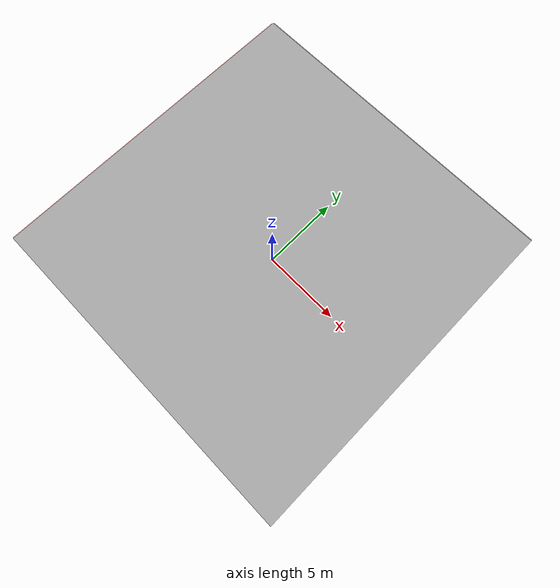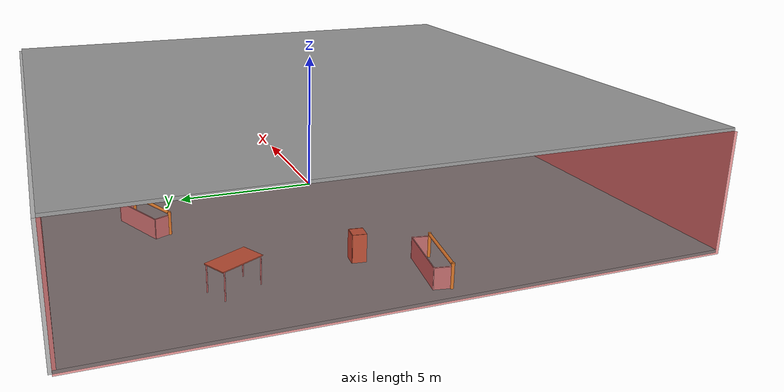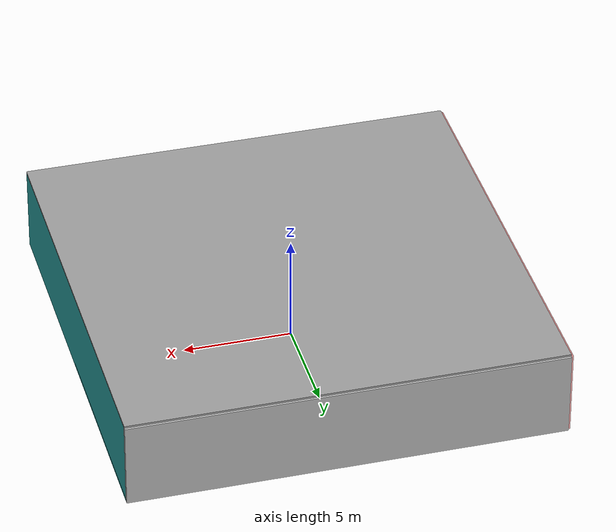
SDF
<sdf version="1.4">
 <world name="default">
  <physics type="ode">
   <max_step_size>0.001</max_step_size>
   <real_time_factor>1</real_time_factor>
   <real_time_update_rate>1000</real_time_update_rate>
   <gravity>0 0 -9.8</gravity>
  </physics>
  <scene><ambient>0.4 0.4 0.4 1</ambient><background>0.7 0.7 0.7 1</background><shadows>1</shadows></scene>
  <model name="Surrounding">
   <static>1</static>
   <link name="Ceiling">
    <collision name="Ceiling_Collision"><geometry><box><size>20 20 0.1</size></box></geometry></collision>
    <visual name="Ceiling_Visual">
     <geometry><box><size>20 20 0.1</size></box></geometry>
     <material>
      <script><uri>file://media/materials/scripts/gazebo.material</uri><name>Gazebo/GreyGradientSky</name></script>
     </material>
    </visual>
    <pose>0 0 4.05 0 0 0</pose>
   </link>
   <link name="Wall_South">
    <collision name="Wall_South_Collision">
     <geometry><box><size>20 0 4</size></box></geometry>
     <pose>0 0 2 0 -0 0</pose>
    </collision>
    <visual name="Wall_South_Visual">
     <pose>0 0 2 0 -0 0</pose>
     <geometry><box><size>20 0 4</size></box></geometry>
     <material>
      <script><uri>file://media/materials/scripts/gazebo.material</uri><name>Gazebo/LightOff</name></script>
     </material>
    </visual>
    <velocity_decay><linear>0</linear><angular>0</angular></velocity_decay>
    <pose>0 -10 0 0 -0 0</pose>
   </link>
   <link name="Wall_East">
    <collision name="Wall_21_Collision">
     <geometry><box><size>20 0 4</size></box></geometry>
     <pose>0 0 2 0 -0 0</pose>
    </collision>
    <visual name="Wall_21_Visual">
     <pose>0 0 2 0 -0 0</pose>
     <geometry><box><size>20 0 4</size></box></geometry>
     <material>
      <script><uri>file://media/materials/scripts/gazebo.material</uri><name>Gazebo/TurquoiseGlow</name></script>
     </material>
    </visual>
    <velocity_decay><linear>0</linear><angular>0</angular></velocity_decay>
    <pose>10 0 0 0 -0 1.5708</pose>
   </link>
   <link name="Wall_North">
    <collision name="Wall_22_Collision">
     <geometry><box><size>20 0.2 4</size></box></geometry>
     <pose>0 0 2 0 -0 0</pose>
    </collision>
    <visual name="Wall_22_Visual">
     <pose>0 0 2 0 -0 0</pose>
     <geometry><box><size>20 0.2 4</size></box></geometry>
     <material>
      <script><uri>file://media/materials/scripts/gazebo.material</uri><name>Gazebo/PioneerBody</name></script>
     </material>
    </visual>
    <velocity_decay><linear>0</linear><angular>0</angular></velocity_decay>
    <pose>0 10 0 0 -0 0</pose>
   </link>
   <link name="Wall_West">
    <collision name="Wall_23_Collision">
     <geometry><box><size>20 0.2 4</size></box></geometry>
     <pose>0 0 2 0 -0 0</pose>
    </collision>
    <visual name="Wall_23_Visual">
     <pose>0 0 2 0 -0 0</pose>
     <geometry><box><size>20 0.2 4</size></box></geometry>
     <material>
      <script><uri>file://media/materials/scripts/gazebo.material</uri><name>Gazebo/RedTransparent</name></script>
     </material>
    </visual>
    <velocity_decay><linear>0</linear><angular>0</angular></velocity_decay>
    <pose>-10 0 0 0 0 -1.5708</pose>
   </link>
   <link name="Ground_link">
    <collision name="collision">
     <pose>0 0 .05 0 -0 0</pose>
     <geometry><box><size>20 20 0.1</size></box></geometry>
    </collision>
    <visual name="visual">
     <pose>0 0 .05 0 -0 0</pose>
     <geometry><box><size>20 20 0.1</size></box></geometry>
     <material>
      <script>
       <uri>file://media/materials/scripts/gazebo.material</uri>
       <name>Gazebo/TurquoiseGlowOutline</name>
      </script>
     </material>
    </visual>
   </link>
   <static>1</static>
  </model>
  <spherical_coordinates>
   <surface_model>EARTH_WGS84</surface_model>
   <latitude_deg>0</latitude_deg>
   <longitude_deg>0</longitude_deg>
   <elevation>0</elevation>
   <heading_deg>0</heading_deg>
  </spherical_coordinates>
  <light name="lightball_0" type="diffuse">
   <diffuse>0.8 0.8 0.8 1</diffuse>
   <specular>0.2 0.2 0.2 1</specular>
   <attenuation>
    <range>100</range>
    <constant>0.7</constant>
    <linear>0.01</linear>
    <quadratic>0.001</quadratic>
   </attenuation>
   <direction>-0.5 0.1 -0.9</direction>
   <pose>-6.77408003738 -9.20640486624 2.6387990824 0 0 0</pose>
  </light>
  <light name="lightball_1" type="diffuse">
   <diffuse>0.8 0.8 0.8 1</diffuse>
   <specular>0.2 0.2 0.2 1</specular>
   <attenuation>
    <range>100</range>
    <constant>0.7</constant>
    <linear>0.01</linear>
    <quadratic>0.001</quadratic>
   </attenuation>
   <direction>-0.5 0.1 -0.9</direction>
   <pose>-3.89590659764 1.29530085802 0.900553088921 0 0 0</pose>
  </light>
  <light name="lightball_2" type="diffuse">
   <diffuse>0.8 0.8 0.8 1</diffuse>
   <specular>0.2 0.2 0.2 1</specular>
   <attenuation>
    <range>100</range>
    <constant>0.7</constant>
    <linear>0.01</linear>
    <quadratic>0.001</quadratic>
   </attenuation>
   <direction>-0.5 0.1 -0.9</direction>
   <pose>-7.7467153517 1.46385736658 0.65525899012 0 0 0</pose>
  </light>
  <light name="lightball_3" type="diffuse">
   <diffuse>0.8 0.8 0.8 1</diffuse>
   <specular>0.2 0.2 0.2 1</specular>
   <attenuation>
    <range>100</range>
    <constant>0.7</constant>
    <linear>0.01</linear>
    <quadratic>0.001</quadratic>
   </attenuation>
   <direction>-0.5 0.1 -0.9</direction>
   <pose>-4.02205921928 -2.01013541802 2.43099323371 0 0 0</pose>
  </light>
  <light name="lightball_4" type="diffuse">
   <diffuse>0.8 0.8 0.8 1</diffuse>
   <specular>0.2 0.2 0.2 1</specular>
   <attenuation>
    <range>100</range>
    <constant>0.7</constant>
    <linear>0.01</linear>
    <quadratic>0.001</quadratic>
   </attenuation>
   <direction>-0.5 0.1 -0.9</direction>
   <pose>-0.884124654923 -6.30203321087 1.5092631711 0 0 0</pose>
  </light>
  <light name="lightball_5" type="diffuse">
   <diffuse>0.8 0.8 0.8 1</diffuse>
   <specular>0.2 0.2 0.2 1</specular>
   <attenuation>
    <range>100</range>
    <constant>0.7</constant>
    <linear>0.01</linear>
    <quadratic>0.001</quadratic>
   </attenuation>
   <direction>-0.5 0.1 -0.9</direction>
   <pose>-8.58259757392 5.76688585988 1.87134356506 0 0 0</pose>
  </light>
  <light name="lightball_6" type="diffuse">
   <diffuse>0.8 0.8 0.8 1</diffuse>
   <specular>0.2 0.2 0.2 1</specular>
   <attenuation>
    <range>100</range>
    <constant>0.7</constant>
    <linear>0.01</linear>
    <quadratic>0.001</quadratic>
   </attenuation>
   <direction>-0.5 0.1 -0.9</direction>
   <pose>-9.28733331856 -5.71896310162 2.20678604196 0 0 0</pose>
  </light>
  <light name="lightball_7" type="diffuse">
   <diffuse>0.8 0.8 0.8 1</diffuse>
   <specular>0.2 0.2 0.2 1</specular>
   <attenuation>
    <range>100</range>
    <constant>0.7</constant>
    <linear>0.01</linear>
    <quadratic>0.001</quadratic>
   </attenuation>
   <direction>-0.5 0.1 -0.9</direction>
   <pose>-2.31707791999 -8.80899013892 1.14442779061 0 0 0</pose>
  </light>
  <include>
   <uri>model://robocup_3Dsim_goal</uri>
   <pose>-8.47104624289 -1.09170916123 0 0 0 1.40825254355</pose>
  </include>
  <include><uri>model://cabinet</uri><pose>-6.87841144336 0.887650777462 0 0 0 1.4518782157</pose></include>
  <include><uri>model://table</uri><pose>-7.46316712706 4.90273697492 0 0 0 2.05196298709</pose></include>
  <include>
   <uri>model://robocup_3Dsim_goal</uri>
   <pose>-2.16088974317 6.37811776208 0 0 0 1.99534178683</pose>
  </include>
  <include>
   <uri>model://construction_cone</uri>
   <pose>0.778407810994 -7.96023783091 0 0 0 1.21120824519</pose>
  </include>
  <include><uri>model://cabinet</uri><pose>3.5889456072 -7.64654325289 0 0 0 1.00435327154</pose></include>
  <include><uri>model://cabinet</uri><pose>7.65634896722 1.49715700937 0 0 0 2.79682715647</pose></include>
 </world>
</sdf>

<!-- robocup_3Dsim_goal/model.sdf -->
<sdf version="1.5">
  <model name="robocup_3d_goal">
    <static>true</static>
    <link name="left_post">
      <pose>0 1.05 0.45 0 0 0</pose>
      <collision name="collision">
        <geometry>
          <cylinder>
            <radius>0.05</radius>
            <length>0.9</length>
          </cylinder>
        </geometry>
      </collision>
      <visual name="visual">
        <geometry>
          <cylinder>
            <radius>0.05</radius>
            <length>0.9</length>
          </cylinder>
        </geometry>
        <material>
          <script>
            <uri>file://media/materials/scripts/gazebo.material</uri>
            <name>Gazebo/ZincYellow</name>
          </script>
        </material>
      </visual>
    </link>
    <link name="left_support_horiz_lower">
      <pose>0.30 1.05 0.01 0 0 0</pose>
      <collision name="collision">
        <geometry>
          <box>
            <size>0.50 0.02 0.02</size>
          </box>
        </geometry>
      </collision>
      <visual name="visual">
        <geometry>
          <box>
            <size>0.50 0.02 0.02</size>
          </box>
        </geometry>
        <material>
          <script>
            <uri>file://media/materials/scripts/gazebo.material</uri>
            <name>Gazebo/White</name>
          </script>
        </material>
      </visual>
    </link>
    <link name="left_support_horiz_upper">
      <pose>0.30 1.05 0.79 0 0 0</pose>
      <collision name="collision">
        <geometry>
          <box>
            <size>0.50 0.02 0.02</size>
          </box>
        </geometry>
      </collision>
      <visual name="visual">
        <geometry>
          <box>
            <size>0.50 0.02 0.02</size>
          </box>
        </geometry>
        <material>
          <script>
            <uri>file://media/materials/scripts/gazebo.material</uri>
            <name>Gazebo/White</name>
          </script>
        </material>
      </visual>
    </link>
    <link name="left_support_vertical">
      <pose>0.56 1.05 0.4 0 1.5708 0</pose>
      <collision name="collision">
        <geometry>
          <box>
            <size>0.80 0.02 0.02</size>
          </box>
        </geometry>
      </collision>
      <visual name="visual">
        <geometry>
          <box>
            <size>0.80 0.02 0.02</size>
          </box>
        </geometry>
        <material>
          <script>
            <uri>file://media/materials/scripts/gazebo.material</uri>
            <name>Gazebo/White</name>
          </script>
        </material>
      </visual>
    </link>
    <link name="right_support_horiz_lower">
      <pose>0.30 -1.05 0.01 0 0 0</pose>
      <collision name="collision">
        <geometry>
          <box>
            <size>0.50 0.02 0.02</size>
          </box>
        </geometry>
      </collision>
      <visual name="visual">
        <geometry>
          <box>
            <size>0.50 0.02 0.02</size>
          </box>
        </geometry>
        <material>
          <script>
            <uri>file://media/materials/scripts/gazebo.material</uri>
            <name>Gazebo/White</name>
          </script>
        </material>
      </visual>
    </link>
    <link name="right_support_horiz_upper">
      <pose>0.30 -1.05 0.79 0 0 0</pose>
      <collision name="collision">
        <geometry>
          <box>
            <size>0.50 0.02 0.02</size>
          </box>
        </geometry>
      </collision>
      <visual name="visual">
        <geometry>
          <box>
            <size>0.50 0.02 0.02</size>
          </box>
        </geometry>
        <material>
          <script>
            <uri>file://media/materials/scripts/gazebo.material</uri>
            <name>Gazebo/White</name>
          </script>
        </material>
      </visual>
    </link>
    <link name="right_support_vertical">
      <pose>0.56 -1.05 0.4 0 1.5708 0</pose>
      <collision name="collision">
        <geometry>
          <box>
            <size>0.80 0.02 0.02</size>
          </box>
        </geometry>
      </collision>
      <visual name="visual">
        <geometry>
          <box>
            <size>0.80 0.02 0.02</size>
          </box>
        </geometry>
        <material>
          <script>
            <uri>file://media/materials/scripts/gazebo.material</uri>
            <name>Gazebo/White</name>
          </script>
        </material>
      </visual>
    </link>
    <link name="center_support_horiz_lower">
      <pose>0.56 0 0.01 0 1.5708 0</pose>
      <collision name="collision">
        <geometry>
          <box>
            <size>0.02 2.08 0.02</size>
          </box>
        </geometry>
      </collision>
      <visual name="visual">
        <geometry>
          <box>
            <size>0.02 2.08 0.02</size>
          </box>
        </geometry>
        <material>
          <script>
            <uri>file://media/materials/scripts/gazebo.material</uri>
            <name>Gazebo/White</name>
          </script>
        </material>
      </visual>
    </link>
    <link name="center_support_horiz_upper">
      <pose>0.56 0 0.79 0 1.5708 0</pose>
      <collision name="collision">
        <geometry>
          <box>
            <size>0.02 2.08 0.02</size>
          </box>
        </geometry>
      </collision>
      <visual name="visual">
        <geometry>
          <box>
            <size>0.02 2.08 0.02</size>
          </box>
        </geometry>
        <material>
          <script>
            <uri>file://media/materials/scripts/gazebo.material</uri>
            <name>Gazebo/White</name>
          </script>
        </material>
      </visual>
    </link>
    <link name="right_post">
      <pose>0 -1.05 0.45 0 0 0</pose>
      <collision name="collision">
        <geometry>
          <cylinder>
            <radius>0.05</radius>
            <length>0.9</length>
          </cylinder>
        </geometry>
      </collision>
      <visual name="visual">
        <geometry>
          <cylinder>
            <radius>0.05</radius>
            <length>0.9</length>
          </cylinder>
        </geometry>
        <material>
          <script>
            <uri>file://media/materials/scripts/gazebo.material</uri>
            <name>Gazebo/ZincYellow</name>
          </script>
        </material>
      </visual>
    </link>
    <link name="crossbar">
      <pose>0 0 0.85 1.57 1.57 0</pose>
      <collision name="collision">
        <geometry>
          <cylinder>
            <radius>0.05</radius>
            <length>2.0</length>
          </cylinder>
        </geometry>
      </collision>
      <visual name="visual">
        <geometry>
          <cylinder>
            <radius>0.05</radius>
            <length>2.0</length>
          </cylinder>
        </geometry>
        <material>
          <script>
            <uri>file://media/materials/scripts/gazebo.material</uri>
            <name>Gazebo/ZincYellow</name>
          </script>
        </material>
      </visual>
    </link>
    <link name="center_net">
      <pose>0.56 0 0.40 0 0 0</pose>
      <collision name="collision">
        <geometry>
          <box>
            <size>0.01 2.1 0.80</size>
          </box>
        </geometry>
      </collision>
      <visual name="visual">
        <geometry>
          <box>
            <size>0.01 2.1 0.80</size>
          </box>
        </geometry>
        <material>
          <script>
            <uri>model://../model_source/models/robocup09_spl_field/materials/scripts/</uri>
            <uri>model://../model_source/models/robocup09_spl_field/materials/textures/</uri>
            <name>RoboCup/Net</name>
          </script>
        </material>
      </visual>
    </link>
    <link name="left_net">
      <pose>0.30 1.05 0.40 0 0 0</pose>
      <collision name="collision">
        <geometry>
          <box>
            <size>0.50 0.01 0.76</size>
          </box>
        </geometry>
      </collision>
      <visual name="visual">
        <geometry>
          <box>
            <size>0.50 0.01 0.76</size>
          </box>
        </geometry>
        <material>
          <script>
            <uri>model://../model_source/models/robocup09_spl_field/materials/scripts/</uri>
            <uri>model://../model_source/models/robocup09_spl_field/materials/textures/</uri>
            <name>RoboCup/Net</name>
          </script>
        </material>
      </visual>
    </link>
    <link name="right_net">
      <pose>0.30 -1.05 0.40 0 0 0</pose>
      <collision name="collision">
        <geometry>
          <box>
            <size>0.50 0.01 0.76</size>
          </box>
        </geometry>
      </collision>
      <visual name="visual">
        <geometry>
          <box>
            <size>0.50 0.01 0.76</size>
          </box>
        </geometry>
        <material>
          <script>
            <uri>model://../model_source/models/robocup09_spl_field/materials/scripts/</uri>
            <uri>model://../model_source/models/robocup09_spl_field/materials/textures/</uri>
            <name>RoboCup/Net</name>
          </script>
        </material>
      </visual>
    </link>
  </model>
</sdf>

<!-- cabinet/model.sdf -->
<sdf version="1.5">
  <model name="cabinet">
    <static>true</static>
    <link name="cabinet_bottom_plate">
      <inertial>
        <pose>0 0 -1 0 0 0</pose>
        <inertia>
          <ixx>2.050000</ixx>
          <ixy>0</ixy>
          <ixz>0</ixz>
          <iyy>2.050000</iyy>
          <iyz>0</iyz>
          <izz>2.050000</izz>
        </inertia>
        <mass>25.000000</mass>
      </inertial>
      <collision name="cabinet_bottom_plate_geom">
        <pose>0 0 0.010000 0 0 0</pose>
        <geometry>
          <box>
            <size>0.450000 0.450000 0.020000</size>
          </box>
        </geometry>
      </collision>
      <visual name="cabinet_bottom_plate_geom_visual">
        <pose>0 0 0.010000 0 0 0</pose>
        <geometry>
          <box>
            <size>0.450000 0.450000 0.020000</size>
          </box>
        </geometry>
        <material>
          <script>
            <uri>model://media/materials/scripts/gazebo.material</uri>
            <name>Gazebo/Wood</name>
          </script>
        </material>
      </visual>
      <collision name="cabinet_bottom_plate_geom_cabinet_back_plate">
        <pose>0.235000 0 0.510000 0 0 0</pose>
        <geometry>
          <box>
            <size>0.020000 0.450000 1.020000</size>
          </box>
        </geometry>
      </collision>
      <visual name="cabinet_bottom_plate_geom_cabinet_back_plate_visual">
        <pose>0.235000 0 0.510000 0 0 0</pose>
        <geometry>
          <box>
            <size>0.020000 0.450000 1.020000</size>
          </box>
        </geometry>
        <material>
          <script>
            <uri>model://media/materials/scripts/gazebo.material</uri>
            <name>Gazebo/Wood</name>
          </script>
        </material>
      </visual>
      <collision name="cabinet_bottom_plate_geom_cabinet_left_plate">
        <pose>0 0.235000 0.510000 0 0 0</pose>
        <geometry>
          <box>
            <size>0.450000 0.020000 1.020000</size>
          </box>
        </geometry>
      </collision>
      <visual name="cabinet_bottom_plate_geom_cabinet_left_plate_visual">
        <pose>0 0.235000 0.510000 0 0 0</pose>
        <geometry>
          <box>
            <size>0.450000 0.020000 1.020000</size>
          </box>
        </geometry>
        <material>
          <script>
            <uri>model://media/materials/scripts/gazebo.material</uri>
            <name>Gazebo/Wood</name>
          </script>
        </material>
      </visual>
      <collision name="cabinet_bottom_plate_geom_cabinet_middle_plate">
        <pose>0 0 0.510000 0 0 0</pose>
        <geometry>
          <box>
            <size>0.450000 0.450000 0.020000</size>
          </box>
        </geometry>
      </collision>
      <visual name="cabinet_bottom_plate_geom_cabinet_middle_plate_visual">
        <pose>0 0 0.510000 0 0 0</pose>
        <geometry>
          <box>
            <size>0.450000 0.450000 0.020000</size>
          </box>
        </geometry>
        <material>
          <script>
            <uri>model://media/materials/scripts/gazebo.material</uri>
            <name>Gazebo/Wood</name>
          </script>
        </material>
      </visual>
      <collision name="cabinet_bottom_plate_geom_cabinet_right_plate">
        <pose>0 -0.235000 0.510000 0 0 0</pose>
        <geometry>
          <box>
            <size>0.450000 0.020000 1.020000</size>
          </box>
        </geometry>
      </collision>
      <visual name="cabinet_bottom_plate_geom_cabinet_right_plate_visual">
        <pose>0 -0.235000 0.510000 0 0 0</pose>
        <geometry>
          <box>
            <size>0.450000 0.020000 1.020000</size>
          </box>
        </geometry>
        <material>
          <script>
            <uri>model://media/materials/scripts/gazebo.material</uri>
            <name>Gazebo/Wood</name>
          </script>
        </material>
      </visual>
      <collision name="cabinet_bottom_plate_geom_cabinet_top_plate">
        <pose>0 0 1.010000 0 0 0</pose>
        <geometry>
          <box>
            <size>0.450000 0.450000 0.020000</size>
          </box>
        </geometry>
      </collision>
      <visual name="cabinet_bottom_plate_geom_cabinet_top_plate_visual">
        <pose>0 0 1.010000 0 0 0</pose>
        <geometry>
          <box>
            <size>0.450000 0.450000 0.020000</size>
          </box>
        </geometry>
        <material>
          <script>
            <uri>model://media/materials/scripts/gazebo.material</uri>
            <name>Gazebo/Wood</name>
          </script>
        </material>
      </visual>
    </link>
  </model>
</sdf>

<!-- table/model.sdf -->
<sdf version="1.5">
  <model name="table">
    <static>true</static>
    <link name="link">
      <collision name="surface">
        <pose>0 0 1.0 0 0 0</pose>
        <geometry>
          <box>
            <size>1.5 0.8 0.03</size>
          </box>
        </geometry>
        <surface>
          <friction>
            <ode>
              <mu>0.6</mu>
              <mu2>0.6</mu2>
            </ode>
          </friction>
        </surface>
      </collision>
      <visual name="visual1">
        <pose>0 0 1.0 0 0 0</pose>
        <geometry>
          <box>
            <size>1.5 0.8 0.03</size>
          </box>
        </geometry>
        <material>
          <script>
            <uri>model://media/materials/scripts/gazebo.material</uri>
            <name>Gazebo/Wood</name>
          </script>
        </material>
      </visual>
      <collision name="front_left_leg">
        <pose>0.68 0.38 0.5 0 0 0</pose>
        <geometry>
          <cylinder>
            <radius>0.02</radius>
            <length>1.0</length>
          </cylinder>
        </geometry>
      </collision>
      <visual name="front_left_leg">
        <pose>0.68 0.38 0.5 0 0 0</pose>
        <geometry>
          <cylinder>
            <radius>0.02</radius>
            <length>1.0</length>
          </cylinder>
        </geometry>
        <material>
          <script>
            <uri>model://media/materials/scripts/gazebo.material</uri>
            <name>Gazebo/Grey</name>
          </script>
        </material>
      </visual>
      <collision name="front_right_leg">
        <pose>0.68 -0.38 0.5 0 0 0</pose>
        <geometry>
          <cylinder>
            <radius>0.02</radius>
            <length>1.0</length>
          </cylinder>
        </geometry>
      </collision>
      <visual name="front_right_leg">
        <pose>0.68 -0.38 0.5 0 0 0</pose>
        <geometry>
          <cylinder>
            <radius>0.02</radius>
            <length>1.0</length>
          </cylinder>
        </geometry>
        <material>
          <script>
            <uri>model://media/materials/scripts/gazebo.material</uri>
            <name>Gazebo/Grey</name>
          </script>
        </material>
      </visual>
      <collision name="back_right_leg">
        <pose>-0.68 -0.38 0.5 0 0 0</pose>
        <geometry>
          <cylinder>
            <radius>0.02</radius>
            <length>1.0</length>
          </cylinder>
        </geometry>
      </collision>
      <visual name="back_right_leg">
        <pose>-0.68 -0.38 0.5 0 0 0</pose>
        <geometry>
          <cylinder>
            <radius>0.02</radius>
            <length>1.0</length>
          </cylinder>
        </geometry>
        <material>
          <script>
            <uri>model://media/materials/scripts/gazebo.material</uri>
            <name>Gazebo/Grey</name>
          </script>
        </material>
      </visual>
      <collision name="back_left_leg">
        <pose>-0.68 0.38 0.5 0 0 0</pose>
        <geometry>
          <cylinder>
            <radius>0.02</radius>
            <length>1.0</length>
          </cylinder>
        </geometry>
      </collision>
      <visual name="back_left_leg">
        <pose>-0.68 0.38 0.5 0 0 0</pose>
        <geometry>
          <cylinder>
            <radius>0.02</radius>
            <length>1.0</length>
          </cylinder>
        </geometry>
        <material>
          <script>
            <uri>model://media/materials/scripts/gazebo.material</uri>
            <name>Gazebo/Grey</name>
          </script>
        </material>
      </visual>
    </link>
  </model>
</sdf>

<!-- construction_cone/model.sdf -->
<sdf version="1.5">
  <model name="Construction Cone">
    <link name="link">
      <collision name="collision">
        <geometry>
          <mesh>
            <scale>10 10 10</scale>
            <uri>file://isr-testbed/construction_cone/meshes/construction_cone.dae</uri>
          </mesh>
        </geometry>
      </collision>
      <visual name="visual">
        <geometry>
          <mesh>
            <scale>10 10 10</scale>
            <uri>file://isr-testbed/construction_cone/meshes/construction_cone.dae</uri>
          </mesh>
        </geometry>
      </visual>
    </link>
  </model>
</sdf>
